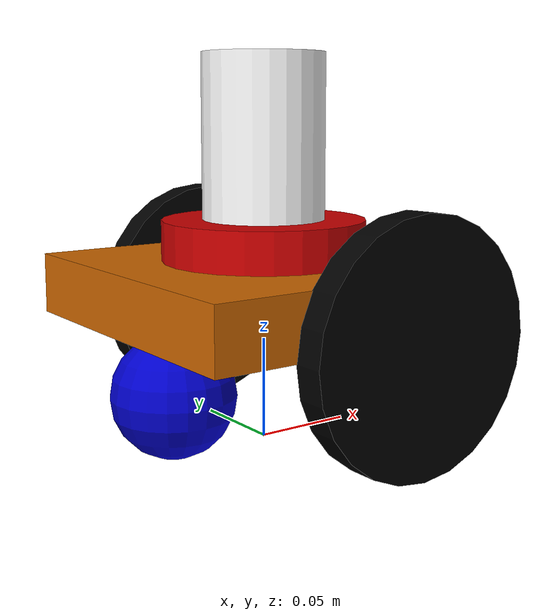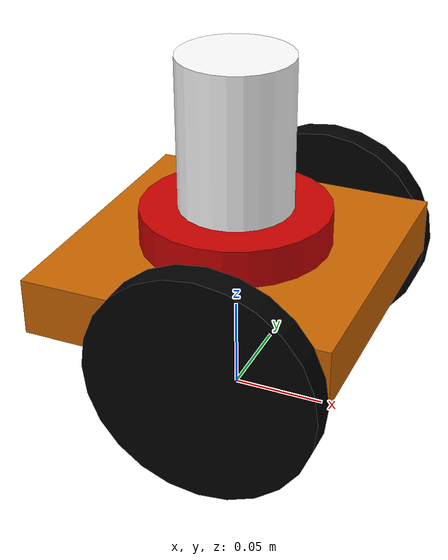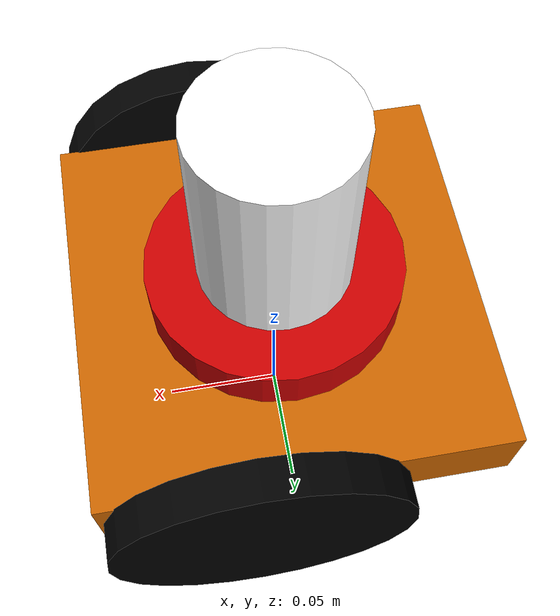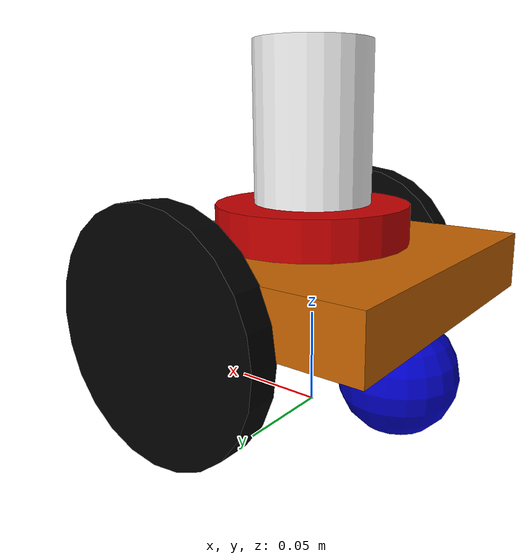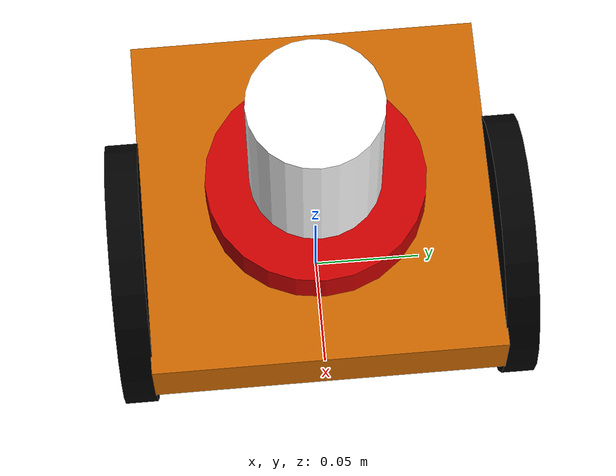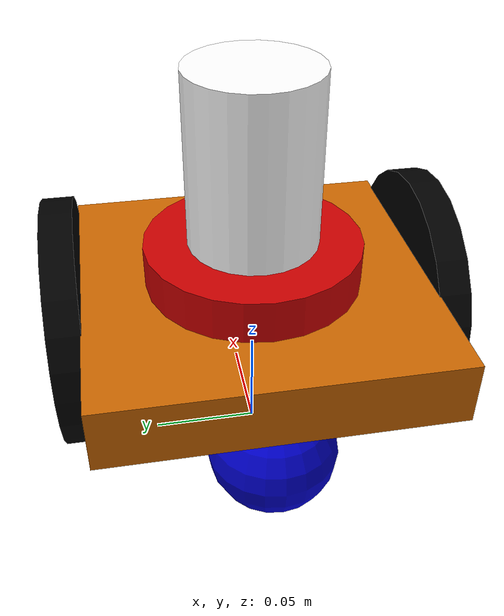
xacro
<?xml version="1.0"?>
<robot xmlns:xacro="http://www.ros.org/wiki/xacro" name="dd_sim">

    <!--Parameters-->
    <xacro:property name="base_width" value="0.16"/>
    <xacro:property name="base_length" value="0.16"/>
    <xacro:property name="base_height" value="0.03"/>
    <xacro:property name="wheel_radius" value="0.06"/>
    <xacro:property name="wheel_length" value="0.015"/>
    <xacro:property name="wheel_separation" value="0.15"/>
    <xacro:property name="base_wheel_gap" value="0.007"/>
    <xacro:property name="wheel_offset" value="0.02"/>
    <xacro:property name="ball_radius" value="${wheel_radius/2}"/>
    <xacro:property name="ball_offset" value="-0.052"/>

    <xacro:property name="link_01_radius" value="0.05"/>
    <xacro:property name="link_01_length" value="0.02"/>
    <xacro:property name="link_02_radius" value="0.03"/>
    <xacro:property name="link_02_length" value="0.08"/>
    <xacro:property name="link_03_radius" value="0.03"/>
    <xacro:property name="link_03_length" value="0.12"/>
    <xacro:property name="link_04_radius" value="0.03"/>
    <xacro:property name="link_04_length" value="0.08"/>

    <!--Color Properties-->
    <material name="blue">
        <color rgba="0 0 0.8 1"/>
    </material>
    <material name="black">
        <color rgba="0 0 0 1"/>
    </material>
    <material name="white">
        <color rgba="1 1 1 1"/>
    </material>
    <material name="red">
        <color rgba="0.8 0.0 0.0 1.0"/>
    </material>
    <material name = "orange">
		<color rgba ="0.8 0.4 0.0 1.0"/>
	</material>
    <material name = "green">
		<color rgba ="0 0.8 0.0 1.0"/>
	</material>
    <material name = "purple">
		<color rgba ="0.8 0 0.4 1.0"/>
	</material>

    <!--Interial macros-->
    <xacro:macro name="cylinder_inertia" params="m r h">
        <inertial>
        <mass value="${m}"/>
        <inertia ixx="${m*(3*r*r+h*h)/12}" ixy = "0" ixz = "0" iyy="${m*(3*r*r+h*h)/12}" iyz = "0" izz="${m*r*r/2}"/>
        </inertial>
    </xacro:macro>

    <xacro:macro name="box_inertia" params="m w h d">
        <inertial>
        <mass value="${m}"/>
        <inertia ixx="${m / 12.0 * (d*d + h*h)}" ixy="0.0" ixz="0.0" iyy="${m / 12.0 * (w*w + h*h)}" iyz="0.0" izz="${m / 12.0 * (w*w + d*d)}"/>
        </inertial>
    </xacro:macro>

    <xacro:macro name="sphere_inertia" params="m r">
        <inertial>
        <mass value="${m}"/>
        <inertia ixx="${2.0*m*(r*r)/5.0}" ixy="0.0" ixz="0.0" iyy="${2.0*m*(r*r)/5.0}" iyz="0.0" izz="${2.0*m*(r*r)/5.0}"/>
        </inertial>
    </xacro:macro>

    <!-- add color to gazebo-->
    <gazebo reference = "base_link">
        <material>Gazebo/Orange</material>
    </gazebo>

    <gazebo reference = "left_wheel">
        <material>Gazebo/Black</material>
    </gazebo>

    <gazebo reference = "right_wheel">
        <material>Gazebo/Black</material>
    </gazebo>

    <gazebo reference = "ball_wheel">
        <material>Gazebo/Blue</material>
    </gazebo>

    <gazebo reference = "link_01">
        <material>Gazebo/Red</material>
    </gazebo>

    <gazebo reference = "link_02">
        <material>Gazebo/White</material>
    </gazebo>

    <gazebo reference = "link_03">
        <material>Gazebo/Green</material>
    </gazebo>

    <gazebo reference = "link_04">
        <material>Gazebo/Purple</material>
    </gazebo>

    <!--foorprint-->
    <link name = "footprint">
        <xacro:box_inertia m="10" w="0.001" h="0.001" d = "0.001"/>
        <visual>
            <origin xyz = "0 0 0 " rpy = "0 0 0 "/>
            <geometry>
                <box size="0.001 0.001 0.001"/>
            </geometry>
        </visual>
    </link>

    <!--Base Link-->
    <link name="base_link">
        <xacro:box_inertia m="3" w="${base_length}" h="${base_width}" d="${base_height}"/>
        <visual>
          <geometry>
            <box size="${base_length} ${base_width} ${base_height}"/>
          </geometry>
          <!--origin rpy="0 0 0" xyz="0 0 ${(base_height/2)+(2*ball_radius)}"/-->
          <material name="orange"/>
        </visual>
        <collision>
          <geometry>
            <box size="${base_length} ${base_width} ${base_height}"/>
          </geometry>
          <!--origin rpy="0 0 0" xyz="0 0 ${(base_height/2)+(2*ball_radius)}"/-->
        </collision>
    </link>

    <!--base link to footprint-->
    <joint name = "base_link_footprint" type="fixed">
        <origin xyz = "0 0 ${wheel_radius + wheel_length}" rpy = "0 0 0"/>
        <parent link = "footprint"/>
        <child link="base_link"/>
    </joint>

    <!--Wheel link & joint macro-->
    <xacro:macro name="wheel" params="prefix reflect">
        <link name="${prefix}_wheel">
        <visual>
            <origin xyz="0 0 0" rpy="${pi/2} 0 0"/>
            <geometry>
                <cylinder radius="${wheel_radius}" length="${wheel_length}"/>
            </geometry>
            <material name="black"/>
        </visual>
        <collision>
            <origin xyz="0 0 0" rpy="${pi/2} 0 0"/>
            <geometry>
                <cylinder radius="${wheel_radius}" length="${wheel_length}"/>
            </geometry>
        </collision>
        <xacro:cylinder_inertia m="1" r="${wheel_radius}" h="${wheel_length}"/>
        </link>

        <joint name="${prefix}_wheel_joint" type="continuous">
            <axis xyz="0 1 0" rpy="0 0 0" />
            <parent link="base_link"/>
            <child link="${prefix}_wheel"/>
            <origin xyz="${wheel_offset} ${(base_width/2+base_wheel_gap)*reflect} -${wheel_length}" rpy="0 0 0"/>
        </joint>
    </xacro:macro>

    <!--Create Left & Right Wheel links/joints-->
    <xacro:wheel prefix="left" reflect="1"/>
    <xacro:wheel prefix="right" reflect="-1"/>

    <!--ball Wheel Link-->
    <link name="ball_wheel">
        <visual>
            <origin xyz="0 0 0" rpy="0 0 0"/>
            <geometry>
                <sphere radius="${ball_radius}"/>
            </geometry>
            <material name="blue"/>
        </visual>
        <collision>
        <origin xyz="0 0 0" rpy="0 0 0"/>
        <geometry>
            <sphere radius="${ball_radius}"/>
        </geometry>
        </collision>
        <xacro:sphere_inertia m="1" r="${ball_radius}"/>
    </link>

    <!--Ball Wheel Joint-->
    <joint name="ball_wheel_joint" type="continuous">
        <axis xyz="0 1 0" rpy="0 0 0" />
        <parent link="base_link"/>
        <child link="ball_wheel"/>
        <origin xyz="${ball_offset} 0 -${ball_radius+wheel_length}" rpy="0 0 0"/>
    </joint>

    <!-- manipulator-->
    <link name="link_01">
        <visual>
            <origin rpy = "0 0 0 " xyz = "0 0 ${link_01_length/2}"/>
            <geometry>
                <cylinder radius="${link_01_radius}" length="${link_01_length}"/>
            </geometry>
            <material name="red"/>
        </visual>
        <collision>
            <origin xyz="0 0 ${link_01_length/2}" rpy="0 0 0"/>
            <geometry>
                <cylinder radius="${link_01_radius}" length="${link_01_length}"/>
            </geometry>
        </collision>
        <xacro:cylinder_inertia m="0.5" r="${link_01_radius}" h="${link_01_length}"/>
    </link>

    <joint name="base_link_to_link_01" type="revolute">
        <axis xyz="0 0 1"/>
        <limit effort = "100.0" lower="-3.14" upper="3.14" velocity="0.5"/>
        <origin rpy = "0 0 0 " xyz = "0 0 ${base_height/2}"/>
        <parent link = "base_link"/>
        <child link = "link_01"/>
    </joint>

    <transmission name="trans_base_link_to_link_01">
        <type>transmission_interface/SimpleTransmission</type>
        <joint name = "base_link_to_link_01">
            <hardwareInterface>hardware_interface/EffortJointInterface</hardwareInterface>
        </joint>
        <actuator name="motor_base_link_to_link_01">
            <hardwareInterface>hardware_interface/EffortJointInterface</hardwareInterface>
            <mechanicalReduction>1</mechanicalReduction>
        </actuator>
    </transmission>

    <link name="link_02">
        <visual>
            <origin rpy = "0 0 0 " xyz = "0 0 ${link_02_length/2}"/>
            <geometry>
                <cylinder radius="${link_02_radius}" length="${link_02_length}"/>
            </geometry>
            <material name="white"/>
        </visual>
        <collision>
            <origin xyz="0 0 ${link_02_length/2}" rpy="0 0 0"/>
            <geometry>
                <cylinder radius="${link_02_radius}" length="${link_02_length}"/>
            </geometry>
        </collision>
        <xacro:cylinder_inertia m="0.5" r="${link_02_radius}" h="${link_02_length}"/>
    </link>

    <joint name="link_01_to_link_02" type="revolute">
        <axis xyz="0 1 0"/>
        <limit effort = "100.0" lower="-1.57" upper="1.57" velocity="0.5"/>
        <origin rpy = "0 0 0 " xyz = "0 0 ${link_01_length}"/>
        <parent link = "link_01"/>
        <child link = "link_02"/>
    </joint>

    <transmission name="trans_link_01_to_link_02">
        <type>transmission_interface/SimpleTransmission</type>
        <joint name = "link_01_to_link_02">
            <hardwareInterface>hardware_interface/EffortJointInterface</hardwareInterface>
        </joint>
        <actuator name="motor_link_01_to_link_02">
            <hardwareInterface>hardware_interface/EffortJointInterface</hardwareInterface>
            <mechanicalReduction>1</mechanicalReduction>
        </actuator>
    </transmission>

    <xacro:include filename="$(find dd_sim)/urdf/dd_gazebo_plugins.xacro"/>

    <gazebo>
        <plugin name="gazebo_ros_control" filename="libgazebo_ros_control.so">
        </plugin>
    </gazebo>

</robot>
